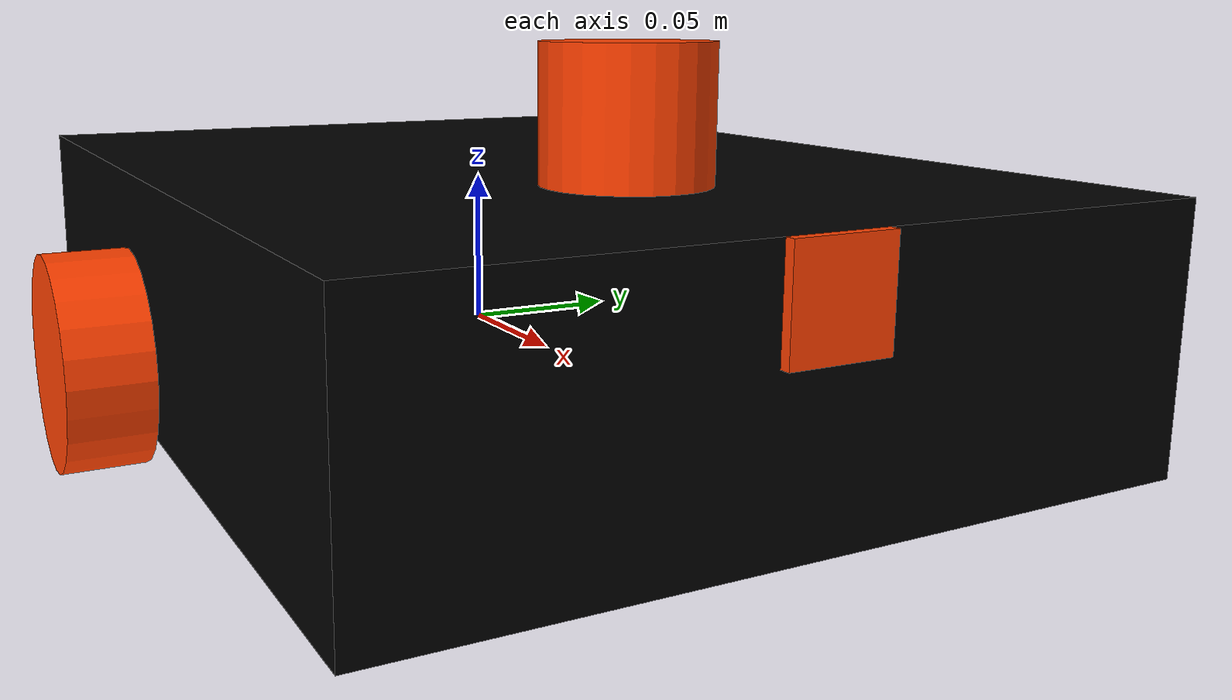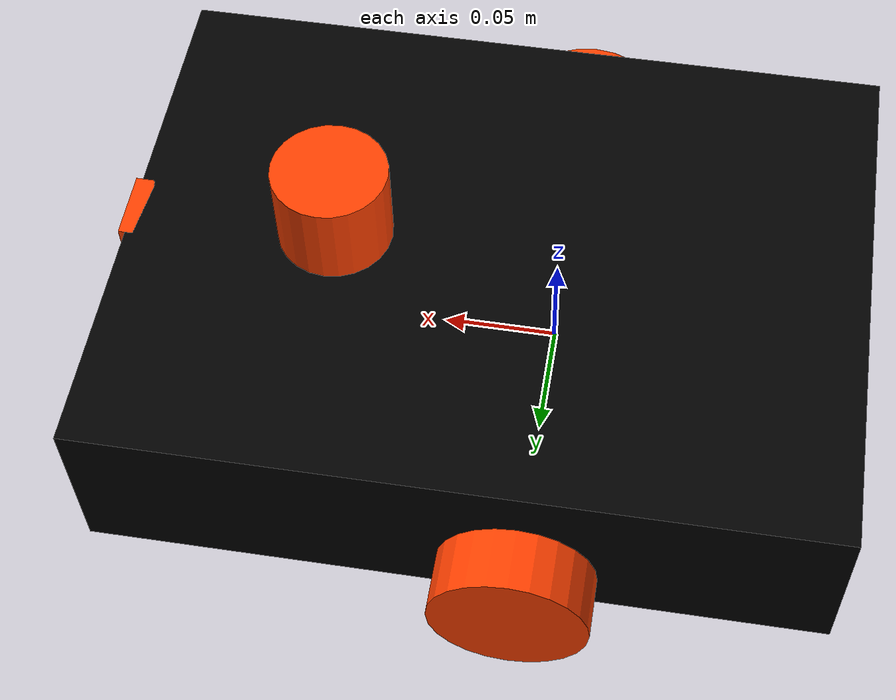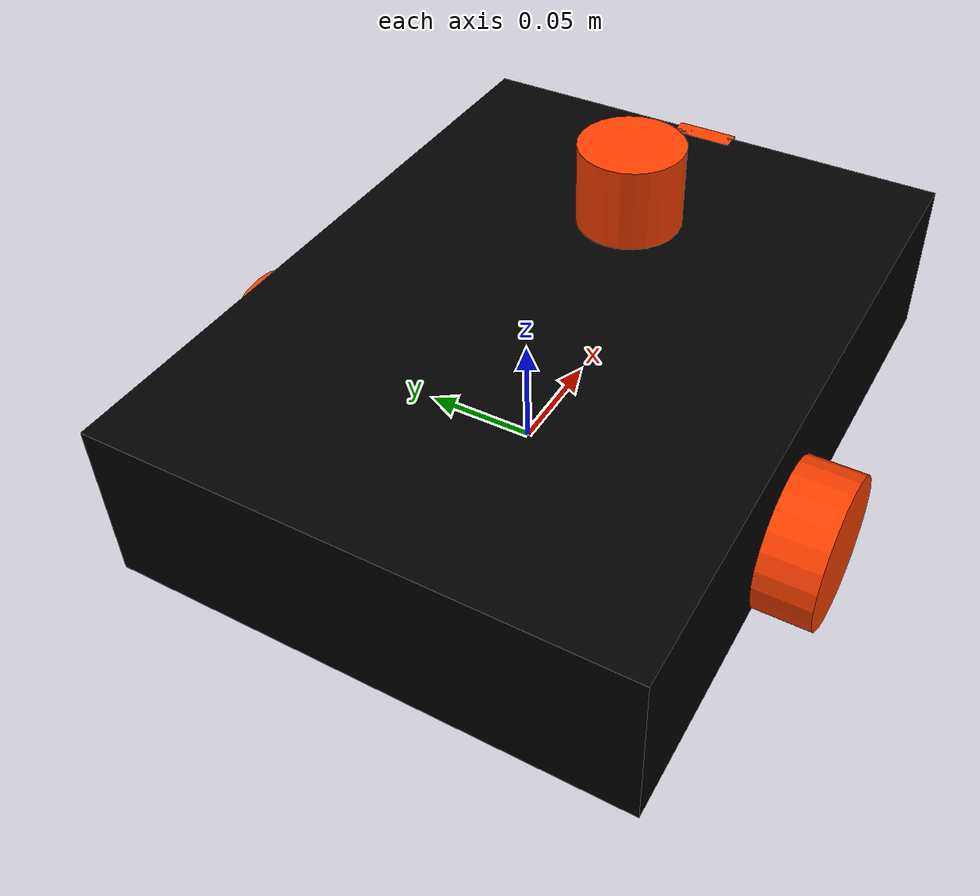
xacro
<?xml version="1.0"?>
<robot xmlns:xacro="http://www.ros.org/wiki/xacro"  name="robot">

    <xacro:arg name="use_ros2_control"              default="true"/>
    <xacro:arg name="use_ros2_control_gz_sim"       default="false"/>

    <!-- Robot_frames -->
    <xacro:include filename = "robot_main.xacro" />

    <!-- Sensors -->
    <xacro:include filename = "lidar.xacro" />
    <xacro:include filename = "camera.xacro" />

</robot>

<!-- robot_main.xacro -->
<robot xmlns:xacro="http://www.ros.org/wiki/xacro">

    <xacro:include filename = "inertial_macros.xacro" />

    <xacro:property name="chassis_length"           value="0.320"/>
    <xacro:property name="chassis_width"            value="0.240"/>
    <xacro:property name="chassis_height"           value="0.078"/>
    <xacro:property name="chassis_mass"             value="0.700"/>

    <xacro:property name="wheel_radius"             value="0.034"/>
    <xacro:property name="wheel_thickness"          value="0.026"/>
    <xacro:property name="wheel_mass"               value="0.050"/>
    <xacro:property name="wheel_offset_x"           value="0.133"/>
    <xacro:property name="wheel_offset_y"           value="0.133"/>
    <xacro:property name="wheel_offset_z"           value="0.020"/>

    <xacro:property name="caster_wheel_radius"      value="${wheel_radius - wheel_offset_z}"/>
    <xacro:property name="caster_wheel_mass"        value="0.010"/>
    <xacro:property name="caster_wheel_offset_x"    value="0.230"/>
    <xacro:property name="caster_wheel_offset_z"    value="${wheel_offset_z - wheel_radius + caster_wheel_radius}"/>

    <!-- Colors -->
    <material name="white">
        <color rgba= "1 1 1 1"/>
    </material>

    <material name="black">
        <color rgba= "0 0 0 1"/>
    </material>

    <material name= "orange">
        <color rgba= "1 0.25 0 1"/>
    </material>

    <material name="cyan">
        <color rgba= "0 1 1 1"/>
    </material>

    <material name="indigo">
        <color rgba= "0.294 0 0.51 1"/>
    </material>

    <!-- convention (except base_link): joint followed by link -->
    <!-- base_link -->
    <link name="base_link">
    </link>

    <!-- base_footprint -->
    <joint name="base_footprint_joint" type="fixed">
        <parent link= "base_link"/>
        <child link= "base_footprint"/>
        <origin xyz= "0 0 0" rpy= "0 0 0"/>
    </joint>

    <link name="base_footprint">
    </link>

    <!-- chasis -->
    <joint name="chasis_joint" type="fixed">
        <parent link= "base_link"/>
        <child link= "chasis"/>
        <origin xyz= "${-wheel_offset_x} 0 ${-wheel_offset_z}"/>
    </joint>

    <link name="chasis">
        <visual>
            <origin xyz= "${chassis_length/2} 0 ${chassis_height/2}" rpy= "0 0 0"/>
            <geometry>
                <box size = "${chassis_length} ${chassis_width} ${chassis_height}"/>
            </geometry>
            <material name= "black"/>
        </visual>
        <collision>
            <origin xyz= "${chassis_length/2} 0 ${chassis_height/2}" rpy= "0 0 0"/>
            <geometry>
                <box size = "${chassis_length} ${chassis_width} ${chassis_height}"/>
            </geometry>
        </collision>
        <xacro:inertial_box mass= "0.5" x="${chassis_length}" y="${chassis_width}" z="${chassis_height}">
            <origin xyz= "${chassis_length/2} 0 ${chassis_height/2}" rpy= "0 0 0"/>
        </xacro:inertial_box>
    </link>

    <gazebo reference="chasis">
        <material>Gazebo/Black</material>
    </gazebo>

    <!-- left_wheel -->
    <joint name="left_wheel_joint" type="continuous">
        <parent link= "base_link"/>
        <child link= "left_wheel"/>
        <origin xyz= "0 ${wheel_offset_y} 0" rpy = "${pi/2} 0 0"/>
        <axis xyz= "0 0 -1"/>
    </joint>

    <link name="left_wheel">
        <visual>
            <geometry>
                <cylinder radius = "${wheel_radius}" length= "${wheel_thickness}"/>
            </geometry>
            <material name= "orange"/>
        </visual>
        <collision>
            <geometry>
                <sphere radius = "${wheel_radius}" />
            </geometry>
        </collision>
        <xacro:inertial_cylinder mass = "${wheel_mass}" radius= "${wheel_radius}" length= "${wheel_thickness}">
            <origin xyz= "0 0 0" rpy= "0 0 0"/>
        </xacro:inertial_cylinder>
    </link>

    <gazebo reference="left_wheel">
        <material>Gazebo/Orange</material>
    </gazebo>

    <!-- right_wheel -->
    <joint name="right_wheel_joint" type="continuous">
        <parent link= "base_link"/>
        <child link= "right_wheel"/>
        <origin xyz= "0 ${-wheel_offset_y} 0" rpy = "${pi/2} 0 0"/>
        <axis xyz= "0 0 -1"/>
    </joint>

    <link name="right_wheel">
        <visual>
            <geometry>
                <cylinder radius = "${wheel_radius}" length= "${wheel_thickness}"/>
            </geometry>
            <material name= "orange"/>
        </visual>
        <collision>
            <geometry>
                <sphere radius = "${wheel_radius}" />
            </geometry>
        </collision>
        <xacro:inertial_cylinder mass = "${wheel_mass}" radius= "${wheel_radius}" length= "${wheel_thickness}">
            <origin xyz= "0 0 0" rpy= "0 0 0"/>
        </xacro:inertial_cylinder>
    </link>

    <gazebo reference="right_wheel">
        <material>Gazebo/Orange</material>
    </gazebo>

    <!-- caster_wheel -->
    <joint name="caster_wheel_joint" type="fixed">
        <parent link= "chasis"/>
        <child link= "caster_wheel"/>
        <origin xyz= "${caster_wheel_offset_x} 0 0"/>
    </joint>

    <link name="caster_wheel">
        <visual>
            <geometry>
                <sphere radius = "${caster_wheel_radius}"/>
            </geometry>
            <material name= "orange"/>
        </visual>
        <collision>
            <geometry>
                <sphere radius = "${caster_wheel_radius}"/>
            </geometry>
        </collision>
        <xacro:inertial_sphere mass= "${caster_wheel_mass}" radius= "${caster_wheel_radius}">
            <origin xyz= "0 0 0" rpy= "0 0 0"/>
        </xacro:inertial_sphere>
    </link>

    <gazebo reference="caster_wheel">
        <material>Gazebo/Orange</material>
        <mu1 value= "0.0001"/>
        <mu2 value= "0.0001"/>
    </gazebo>

</robot>

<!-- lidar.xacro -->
<robot xmlns:xacro="http://www.ros.org/wiki/xacro" name="robot">

    <xacro:property name="lidar_radius"             value="0.025"/>
    <xacro:property name="lidar_thickness"          value="0.040"/>
    <xacro:property name="lidar_offset_x"           value="0.230"/>
    <xacro:property name="lidar_offset_z"           value="0.098"/>

    <!-- Lidar -->
    <joint name="lidar_joint" type="fixed">
        <parent link="chasis"/>
        <child link="lidar_frame"/>
        <origin xyz="${lidar_offset_x} 0.0 ${lidar_offset_z}" rpy="0 0 ${pi}"/>
    </joint>

    <link name="lidar_frame">
        <visual>
            <geometry>
                <cylinder radius="${lidar_radius}" length="${lidar_thickness}"/>
            </geometry>
            <material name="orange"/>
        </visual>
        <collision>
            <geometry>
                <cylinder radius="${lidar_radius}" length="${lidar_thickness}"/>
            </geometry>
        </collision>
        <xacro:inertial_cylinder mass="0.1" radius="${lidar_radius}" length="${lidar_thickness}">
            <origin xyz="0 0 0" rpy="0 0 0"/>
        </xacro:inertial_cylinder>
    </link>

    <!-- Lidar in gazebo-->
    <gazebo reference="lidar_frame">
        <sensor name="lidar" type="gpu_lidar">

            <gz_frame_id>lidar_frame</gz_frame_id>
            <pose>0 0 0 0 0 0</pose>
            <topic>scan</topic>
            <update_rate>10</update_rate>
            <always_on>1</always_on>
            <visualize>true</visualize>

            <lidar>
                <scan>
                    <horizontal>
                        <samples>360</samples>
                        <resolution>1</resolution>
                        <min_angle>-3.14159</min_angle>
                        <max_angle>3.14159</max_angle>
                    </horizontal>
                    <vertical>
                        <samples>1</samples>
                        <resolution>0.1</resolution>
                        <min_angle>0.</min_angle>
                        <max_angle>0.</max_angle>
                    </vertical>
                </scan>
                <range>
                    <min>0.08</min>
                    <max>10.0</max>
                    <resolution>0.01</resolution>
                </range>
                <noise>
                    <type>gaussian</type>
                    <mean>0.0</mean>
                    <stddev>0.01</stddev>
                </noise>
            </lidar>

        <plugin filename="gz-sim-sensors-system"
                name="gz::sim::systems::Sensors">
                <render_engine>ogre2</render_engine>
        </plugin>

        </sensor>
    </gazebo>
</robot>

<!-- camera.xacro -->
<robot xmlns:xacro="http://www.ros.org/wiki/xacro" name="robot">

    <xacro:property name="camera_length"             value="0.01"/>
    <xacro:property name="camera_width"              value="0.03"/>
    <xacro:property name="camera_height"             value="0.03"/>
    <xacro:property name="camera_offset_x"           value="0.318"/>
    <xacro:property name="camera_offset_z"           value="0.063"/>

    <!-- Camera -->
    <joint name="camera_joint" type="fixed">
        <parent link="chasis"/>
        <child link="camera_link"/>
        <origin xyz="${camera_offset_x} 0.0 ${camera_offset_z}" rpy="0 0 0"/>
    </joint>

    <link name="camera_link">
        <visual>
            <geometry>
                <box size="${camera_length} ${camera_width} ${camera_height}" />
            </geometry>
            <material name="orange"/>
        </visual>
    </link>

    <joint name="camera_optical_joint" type="fixed">
        <parent link="camera_link"/>
        <child link="camera_link_optical"/>
        <origin xyz="0.0 0.0 0.0" rpy="${-pi/2} 0 ${-pi/2}"/>
    </joint>

    <link name="camera_link_optical"></link>

    <!-- Camera in gazebo-->
    <gazebo reference="camera_link">
        <sensor name="camera" type="camera">

            <gz_frame_id>camera_link_optical</gz_frame_id>
            <pose>0 0 0 0 0 0</pose>
            <topic>/camera/image_raw</topic>
            <update_rate>30</update_rate>
            <always_on>true</always_on>
            <visualize>true</visualize>

            <camera>
                <horizontal_fov>1.089</horizontal_fov>
                <image>
                    <format>R8G8B8</format>
                    <width>640</width>
                    <height>480</height>
                </image>
                <clip>
                    <near>0.05</near>
                    <far>8.0</far>
                </clip>
            </camera>
        </sensor>
    </gazebo>
</robot>
